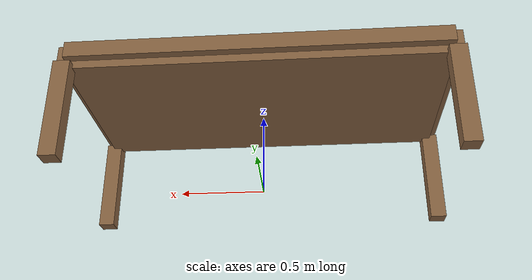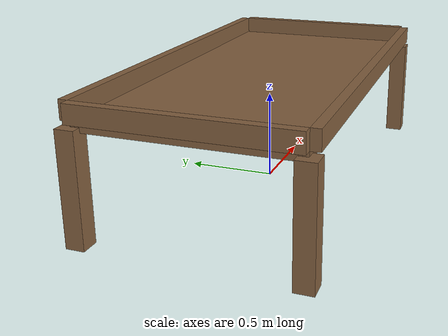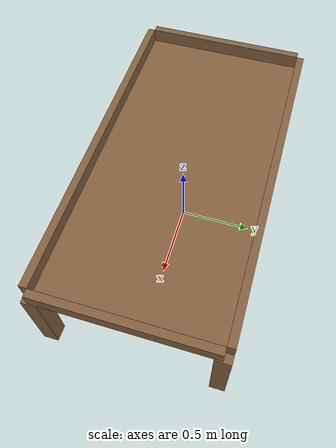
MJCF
<mujoco model="table">
    <compiler angle="radian" balanceinertia="true"/>

    <asset>
        <material name="Wood" rgba="0.52 0.38 0.25 1"/>
    </asset>

    <worldbody>
        <body name="table" pos="0.0 0.0 0.625">

            <body name="left_side_table" pos="0.0 -0.5850000000000001 0.05">
                <geom name="left_side" type="box" size="1.12 0.025 0.05" material="Wood"/>
            </body><!-- Left side -->

            <body name="right_side_table" pos="0.0 0.5850000000000001 0.05">
                <geom name="right_side" type="box" size="1.12 0.025 0.05" material="Wood"/>
            </body><!-- Right side -->

            <body name="front_side_table" pos="1.145 0.0 0.05">
                <geom name="front_side" type="box" size="0.025 0.56 0.05" material="Wood"/>
            </body><!-- Front side -->

            <body name="back_side_table" pos="-1.145 0.0 0.05">
                <geom name="back_side" type="box" size="0.025 0.56 0.05" material="Wood"/>
            </body><!-- Back side -->

            <body name="base_table" pos="0.0 0.0 -0.025">
                <geom name="base_surface" type="box" size="1.12 0.56 0.025" friction="1 0.005 0.0001" material="Wood"/>
            </body><!-- Base -->

            <body name="table_legs" pos="0.0 0.0 -0.6">

                <body name="left_top_leg" pos="1.12 0.56 0.27499999999999997">
                    <geom name="left_top_leg" type="box" size="0.05 0.05 0.3" material="Wood"/>
                </body><!-- left_top_leg -->

                <body name="right_top_leg" pos="1.12 -0.56 0.27499999999999997">
                    <geom name="right_top_leg" type="box" size="0.05 0.05 0.3" material="Wood"/>
                </body><!-- right_top_leg -->

                <body name="left_bottom_leg" pos="-1.12 0.56 0.27499999999999997">
                    <geom name="left_bottom_leg" type="box" size="0.05 0.05 0.3" material="Wood"/>
                </body><!-- left_bottom_leg -->

                <body name="right_bottom_leg" pos="-1.12 -0.56 0.27499999999999997">
                    <geom name="right_bottom_leg" type="box" size="0.05 0.05 0.3" material="Wood"/>
                </body><!-- right_bottom_leg -->

            </body><!-- Legs -->

        </body> <!-- Table -->
    </worldbody>

</mujoco>
